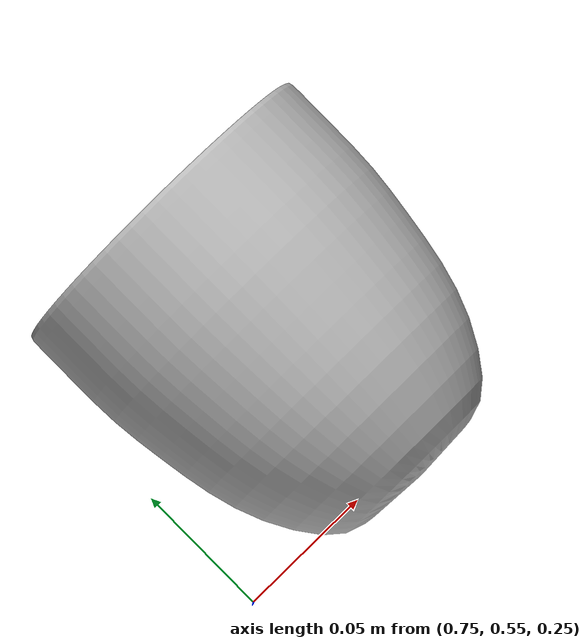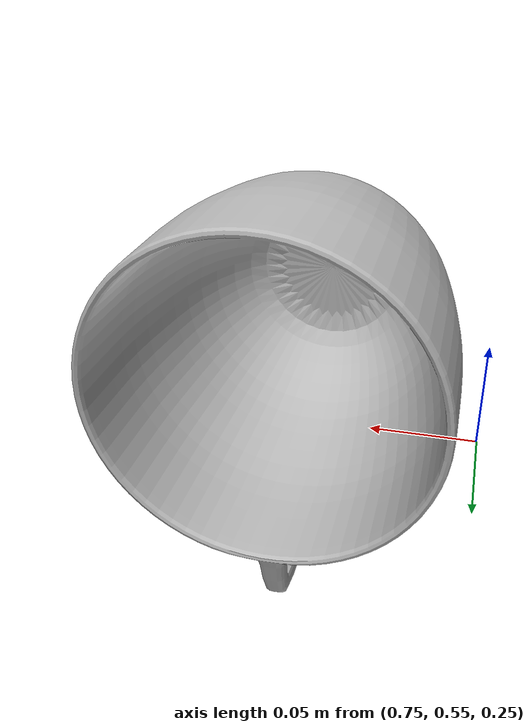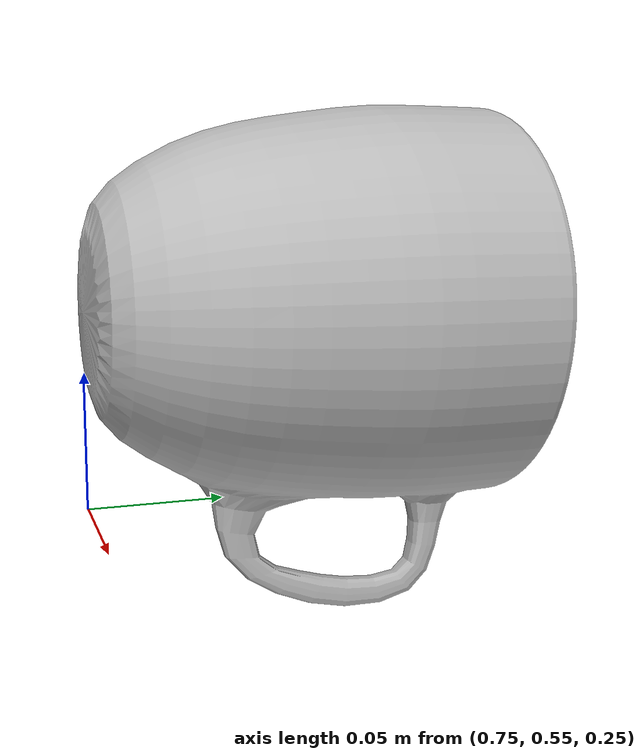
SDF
<?xml version="1.0" ?>
<sdf version="1.5">
  <model name="coffee_mug">
    <link name="link">
      <inertial>
        <pose>0.4 0.1 0.51 0 0 0</pose>
        <mass>0.390</mass>
        <inertia>
          <ixx>0.00055575</ixx>
          <ixy>0</ixy>
          <ixz>0</ixz>
          <iyy>0.00055575</iyy>
          <iyz>0</iyz>
          <izz>0.0001755</izz>
        </inertia>
      </inertial>
      <collision name="collision">
        <pose>0.003937 0.0047244 -0.18 0 0 0</pose>
        <geometry>
          <mesh>
            <uri>model://coffee_mug/meshes/untitled.obj</uri>
          </mesh>
        </geometry>
        <surface>
          <friction>
            <ode>
              <mu>1.0</mu>
              <mu2>1.0</mu2>
            </ode>
          </friction>
          <contact>
            <ode>
              <kp>10000000.0</kp>
              <kd>1.0</kd>
              <min_depth>0.001</min_depth>
              <max_vel>0.1</max_vel>
            </ode>
          </contact>
        </surface>
      </collision>
      <visual name="visual">
        <pose>0.4 0.1 0.5 0 0 0</pose>
        <geometry>
          <mesh>
            <uri>model://coffee_mug/meshes/untitled.obj</uri>
          </mesh>
        </geometry>
      </visual>
    </link>
  </model>
</sdf>
